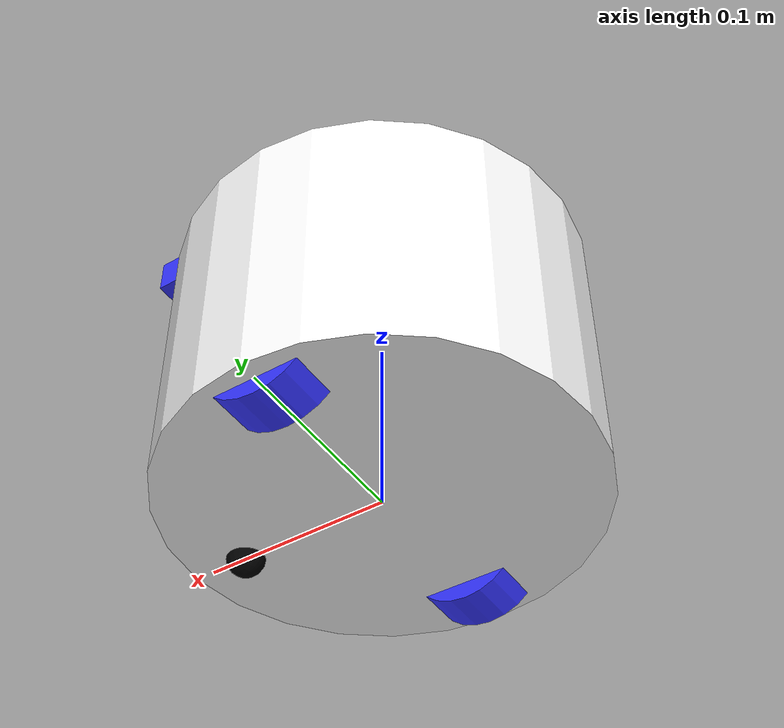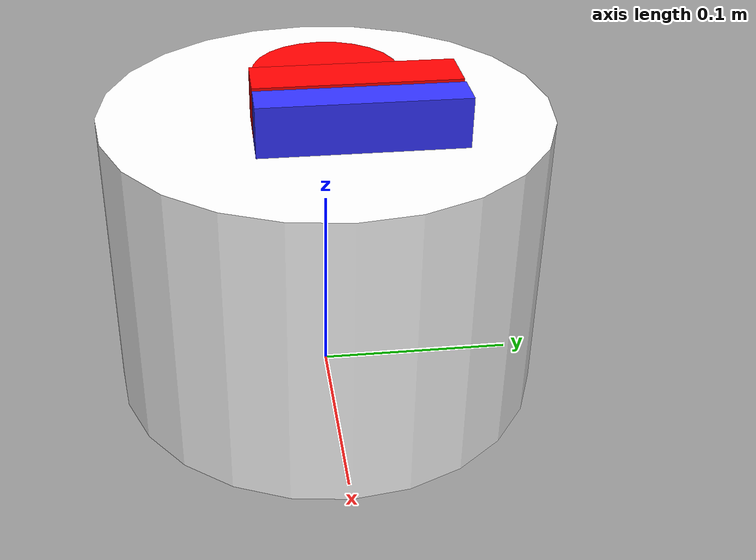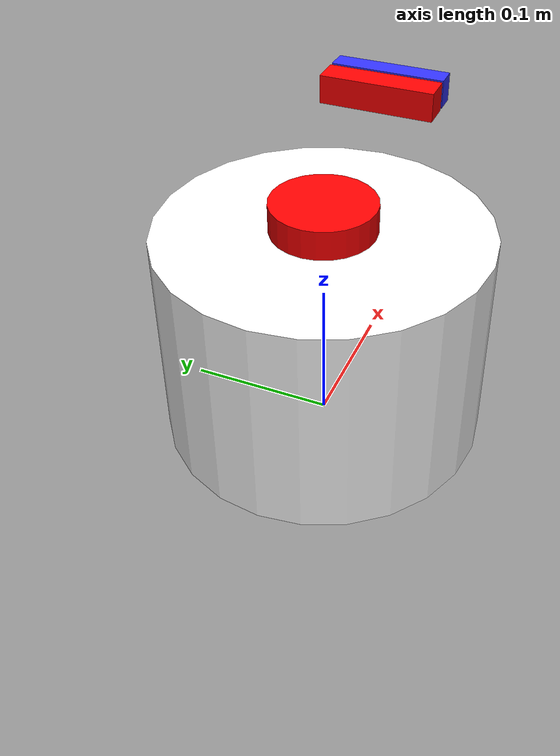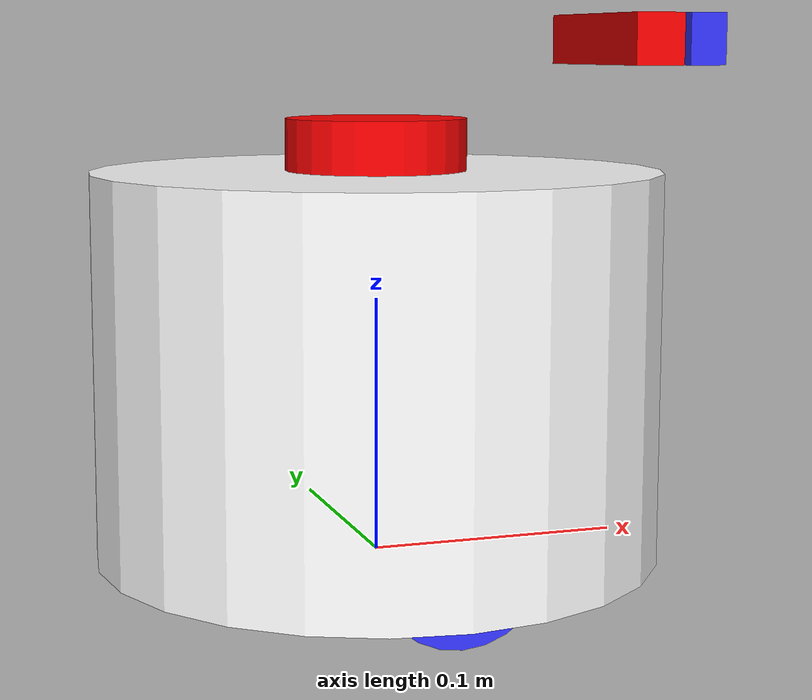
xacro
<?xml version="1.0"?>
<robot xmlns:xacro="http://www.ros.org/wiki/xacro" name="robot">

  <xacro:arg name="prefix" default="robot1_"/>

  <!-- chỉ include macro -->
  <xacro:include filename="$(find my_robot_model)/description/inertial_macros.xacro"/>
  <xacro:include filename="$(find my_robot_model)/description/robot_core.xacro"/>
  <xacro:include filename="$(find my_robot_model)/description/robot_control.xacro"/>
  <xacro:include filename="$(find my_robot_model)/description/lidar.xacro"/>
  <xacro:include filename="$(find my_robot_model)/description/camera.xacro"/>
  <xacro:include filename="$(find my_robot_model)/description/depth_camera.xacro"/>
  <xacro:include filename="$(find my_robot_model)/description/imu.xacro"/>

  <!-- ================= INSTANTIATE ROBOT ================= -->

  <xacro:robot_core prefix="$(arg prefix)"/>
  <xacro:robot_control prefix="$(arg prefix)"/>
  <xacro:lidar prefix="$(arg prefix)"/>
  <xacro:camera prefix="$(arg prefix)"/>
  <xacro:depth_camera prefix="$(arg prefix)"/>
  <xacro:imu prefix="$(arg prefix)"/>
</robot>

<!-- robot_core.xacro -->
<robot xmlns:xacro="http://www.ros.org/wiki/xacro">

<material name="white">
  <color rgba="1 1 1 1" />
</material>
<material name="orange">
  <color rgba="1 0.3 0.1 1"/>
</material>
<material name="blue">
  <color rgba="0.2 0.2 1 1"/>
</material>
<material name="black">
  <color rgba="0 0 0 1"/>
</material>
<material name="red">
  <color rgba="1 0 0 1"/>
</material>

  <!-- ===== INCLUDE INERTIAL MACROS ===== -->
  <xacro:include filename="inertial_macros.xacro"/>

  <!-- ===== ROBOT CORE ===== -->
  <xacro:macro name="robot_core" params="prefix">

    <!-- ===== BASE LINK ===== -->
    <link name="${prefix}base_link"/>

    <!-- ===== BASE FOOTPRINT ===== -->
    <joint name="${prefix}base_footprint_joint" type="fixed">
      <parent link="${prefix}base_link"/>
      <child link="${prefix}base_footprint"/>
      <origin xyz="0 0 0" rpy="0 0 0"/>
    </joint>

    <link name="${prefix}base_footprint"/>

    <!-- ===== CHASSIS ===== -->
    <joint name="${prefix}chassis_joint" type="fixed">
      <parent link="${prefix}base_link"/>
      <child link="${prefix}chassis"/>
      <origin xyz="0 0 0" rpy="0 0 0"/>
    </joint>

    <link name="${prefix}chassis">
      <visual>
        <origin xyz="0 0 0.075" rpy="0 0 0"/>
        <geometry>
          <cylinder radius="0.11" length="0.15"/>
        </geometry>
        <material name="white"/>
      </visual>
      <collision>
        <origin xyz="0 0 0.075" rpy="0 0 0"/>
        <geometry>
          <cylinder radius="0.11" length="0.15"/>
        </geometry>
      </collision>

      <xacro:inertial_cylinder
        mass="1.3"
        length="0.15"
        radius="0.11">
        <origin xyz="0 0 0.075" rpy="0 0 0"/>
      </xacro:inertial_cylinder>
    </link>

    <!-- ===== LEFT WHEEL ===== -->
    <joint name="${prefix}left_wheel_joint" type="continuous">
      <parent link="${prefix}base_link"/>
      <child link="${prefix}left_wheel"/>
      <origin xyz="0 0.0875 0.0235" rpy="-${pi/2} 0 0"/>
      <axis xyz="0 0 1"/>
    </joint>

    <link name="${prefix}left_wheel">
      <visual>
        <geometry>
          <cylinder radius="0.0325" length="0.025"/>
        </geometry>
        <material name="blue"/>
      </visual>
      <collision>
        <geometry>
          <cylinder radius="0.0325" length="0.025"/>
        </geometry>
        <surface>
          <friction>
            <ode>
              <mu>1.0</mu>
              <mu2>1.0</mu2>
            </ode>
          </friction>
        </surface>
      </collision>

      <xacro:inertial_cylinder
        mass="0.05"
        length="0.025"
        radius="0.0325">
        <origin xyz="0 0 0" rpy="0 0 0"/>
      </xacro:inertial_cylinder>
    </link>

    <!-- ===== RIGHT WHEEL ===== -->
    <joint name="${prefix}right_wheel_joint" type="continuous">
      <parent link="${prefix}base_link"/>
      <child link="${prefix}right_wheel"/>
      <origin xyz="0 -0.0875 0.0235" rpy="${pi/2} 0 0"/>
      <axis xyz="0 0 -1"/>
    </joint>

    <link name="${prefix}right_wheel">
      <visual>
        <geometry>
          <cylinder radius="0.0325" length="0.025"/>
        </geometry>
        <material name="blue"/>
      </visual>
      <collision>
        <geometry>
          <cylinder radius="0.0325" length="0.025"/>
        </geometry>
        <surface>
          <friction>
            <ode>
              <mu>1.0</mu>
              <mu2>1.0</mu2>
            </ode>
          </friction>
        </surface>
      </collision>

      <xacro:inertial_cylinder
        mass="0.05"
        length="0.025"
        radius="0.0325">
        <origin xyz="0 0 0" rpy="0 0 0"/>
      </xacro:inertial_cylinder>
    </link>

    <!-- ===== CASTER WHEEL ===== -->
    <joint name="${prefix}caster_wheel_joint" type="fixed">
      <parent link="${prefix}chassis"/>
      <child link="${prefix}caster_wheel"/>
      <origin xyz="0.08 0 0.001" rpy="0 0 0"/>
    </joint>

    <link name="${prefix}caster_wheel">
      <visual>
        <geometry>
          <sphere radius="0.01"/>
        </geometry>
        <material name="black"/>
      </visual>

      <collision>
        <geometry>
          <sphere radius="0.01"/>
        </geometry>
        <surface>
          <friction>
            <ode>
              <mu>0.0</mu>
              <mu2>0.0</mu2>
            </ode>
          </friction>
        </surface>
      </collision>

      <xacro:inertial_sphere mass="0.2" radius="0.01">
        <origin xyz="0 0 0" rpy="0 0 0"/>
      </xacro:inertial_sphere>
    </link>

    <!-- ===== TRANSMISSIONS ===== -->
    <transmission name="${prefix}left_wheel_trans">
      <type>transmission_interface/SimpleTransmission</type>

      <joint name="${prefix}left_wheel_joint">
        <hardwareInterface>hardware_interface/PositionJointInterface</hardwareInterface>
      </joint>

      <actuator name="${prefix}left_wheel_motor">
        <mechanicalReduction>1</mechanicalReduction>
      </actuator>
    </transmission>

    <transmission name="${prefix}right_wheel_trans">
      <type>transmission_interface/SimpleTransmission</type>

      <joint name="${prefix}right_wheel_joint">
        <hardwareInterface>hardware_interface/PositionJointInterface</hardwareInterface>
      </joint>

      <actuator name="${prefix}right_wheel_motor">
        <mechanicalReduction>1</mechanicalReduction>
      </actuator>
    </transmission>

  </xacro:macro>

</robot>

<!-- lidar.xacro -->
<robot xmlns:xacro="http://www.ros.org/wiki/xacro">

  <!-- ================= LIDAR MACRO ================= -->
  <xacro:macro name="lidar" params="prefix">

    <!-- ========= LIDAR JOINT ========= -->
    <joint name="${prefix}laser_joint" type="fixed">
      <parent link="${prefix}chassis"/>
      <child link="${prefix}laser"/>
      <origin xyz="0.0 0 0.15" rpy="0 0 0"/>
    </joint>

    <!-- ========= LIDAR LINK ========= -->
    <link name="${prefix}laser">
      <visual>
        <geometry>
          <cylinder radius="0.035" length="0.04"/>
        </geometry>
        <material name="red"/>
      </visual>

      <collision>
        <geometry>
          <cylinder radius="0.035" length="0.04"/>
        </geometry>
      </collision>

      <xacro:inertial_cylinder
        mass="0.125"
        length="0.04"
        radius="0.035">
        <origin xyz="0 0 0" rpy="0 0 0"/>
      </xacro:inertial_cylinder>
    </link>

    <!-- ========= GAZEBO LIDAR ========= -->
    <gazebo reference="${prefix}laser">
      <sensor name="${prefix}laser" type="gpu_lidar">

        <!-- ⚠️ topic PHẢI prefix -->
        <topic>${prefix}scan</topic>

        <frame>${prefix}laser</frame>
        <update_rate>10</update_rate>

        <lidar>
          <scan>
            <horizontal>
              <samples>360</samples>
              <resolution>1</resolution>
              <min_angle>-3.14159</min_angle>
              <max_angle>3.14159</max_angle>
            </horizontal>
          </scan>

          <range>
            <min>0.12</min>
            <max>10.0</max>
            <resolution>0.015</resolution>
          </range>

          <noise>
            <type>gaussian</type>
            <mean>0.0</mean>
            <stddev>0.01</stddev>
          </noise>
        </lidar>

        <always_on>true</always_on>
        <visualize>true</visualize>
      </sensor>
    </gazebo>

  </xacro:macro>

</robot>

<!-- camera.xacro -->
<robot xmlns:xacro="http://www.ros.org/wiki/xacro">

  <!-- ================= CAMERA MACRO ================= -->
  <xacro:macro name="camera" params="prefix">

    <!-- ===== CAMERA JOINT ===== -->
    <joint name="${prefix}camera_joint" type="fixed">
      <parent link="${prefix}chassis"/>
      <child link="${prefix}camera_link"/>
      <origin xyz="0.1 0 0.2" rpy="0 0 0"/>
    </joint>

    <!-- ===== CAMERA LINK ===== -->
    <link name="${prefix}camera_link">
      <visual>
        <geometry>
          <box size="0.02 0.08 0.02"/>
        </geometry>
        <material name="red"/>
      </visual>

      <collision>
        <geometry>
          <box size="0.02 0.08 0.02"/>
        </geometry>
      </collision>

      <xacro:inertial_box mass="0.1" x="0.02" y="0.08" z="0.02">
        <origin xyz="0 0 0" rpy="0 0 0"/>
      </xacro:inertial_box>
    </link>

    <!-- ===== OPTICAL FRAME ===== -->
    <joint name="${prefix}camera_optical_joint" type="fixed">
      <parent link="${prefix}camera_link"/>
      <child link="${prefix}camera_link_optical"/>
      <origin xyz="0 0 0" rpy="${-pi/2} 0 ${-pi/2}"/>
    </joint>

    <link name="${prefix}camera_link_optical"/>

    <!-- ===== GAZEBO CAMERA ===== -->
    <gazebo reference="${prefix}camera_link">
      <sensor name="${prefix}camera" type="camera">
        <pose relative_to="${prefix}camera_link_optical">
          0 0 0 0 -1.5708 -1.5708
        </pose>

        <topic>${prefix}camera</topic>
        <update_rate>30</update_rate>

        <camera>
          <horizontal_fov>1.089</horizontal_fov>
          <image>
            <width>640</width>
            <height>480</height>
            <format>R8G8B8</format>
          </image>
          <clip>
            <near>0.05</near>
            <far>8.0</far>
          </clip>
        </camera>

        <always_on>true</always_on>
        <visualize>true</visualize>
      </sensor>
    </gazebo>

  </xacro:macro>

</robot>

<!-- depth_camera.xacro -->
<robot xmlns:xacro="http://www.ros.org/wiki/xacro">

  <!-- ================= DEPTH CAMERA MACRO ================= -->
  <xacro:macro name="depth_camera" params="prefix">

    <!-- ===== GẮN CAMERA LÊN CHASSIS ===== -->
    <joint name="${prefix}depth_camera_joint" type="fixed">
      <parent link="${prefix}chassis"/>
      <child link="${prefix}depth_camera_link"/>
      <origin xyz="0.12 0 0.2" rpy="0 0 0"/>
    </joint>

    <link name="${prefix}depth_camera_link">
      <visual>
        <geometry>
          <box size="0.015 0.08 0.02"/>
        </geometry>
        <material name="blue"/>
      </visual>

      <collision>
        <geometry>
          <box size="0.015 0.08 0.02"/>
        </geometry>
      </collision>

      <!-- ⚠️ BẮT BUỘC CÓ ORIGIN -->
      <xacro:inertial_box
        mass="0.1"
        x="0.015"
        y="0.08"
        z="0.02">
        <origin xyz="0 0 0" rpy="0 0 0"/>
      </xacro:inertial_box>
    </link>

    <!-- ===== OPTICAL FRAME ===== -->
    <joint name="${prefix}depth_camera_optical_joint" type="fixed">
      <parent link="${prefix}depth_camera_link"/>
      <child link="${prefix}depth_camera_link_optical"/>
      <origin xyz="0 0 0" rpy="${-pi/2} 0 ${-pi/2}"/>
    </joint>

    <link name="${prefix}depth_camera_link_optical"/>

    <!-- ===== GAZEBO DEPTH CAMERA ===== -->
    <gazebo reference="${prefix}depth_camera_link">
      <sensor name="${prefix}depth_camera" type="depth_camera">

        <pose relative_to="${prefix}depth_camera_link_optical">
          0 0 0 0 -1.5708 -1.5708
        </pose>

        <topic>${prefix}depth_camera</topic>
        <update_rate>30</update_rate>

        <camera>
          <horizontal_fov>1.047</horizontal_fov>
          <image>
            <width>640</width>
            <height>480</height>
            <format>R_FLOAT32</format>
          </image>
          <clip>
            <near>0.1</near>
            <far>10.0</far>
          </clip>
        </camera>

        <always_on>true</always_on>
        <visualize>true</visualize>
      </sensor>
    </gazebo>

  </xacro:macro>

</robot>

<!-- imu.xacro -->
<robot xmlns:xacro="http://www.ros.org/wiki/xacro">

  <!-- ================= IMU MACRO ================= -->
  <xacro:macro name="imu" params="prefix">

    <!-- ========= IMU JOINT ========= -->
    <joint name="${prefix}imu_joint" type="fixed">
      <parent link="${prefix}chassis"/>
      <child link="${prefix}imu_link"/>
      <origin xyz="-0.055 0.025 0.081" rpy="0 0 ${pi}"/>
    </joint>

    <!-- ========= IMU LINK ========= -->
    <link name="${prefix}imu_link">
      <inertial>
        <mass value="0.05"/>
        <origin xyz="0 0 0" rpy="0 0 0"/>
        <inertia
          ixx="1e-4"
          iyy="1e-4"
          izz="1e-4"
          ixy="0"
          ixz="0"
          iyz="0"/>
      </inertial>
    </link>

  </xacro:macro>

</robot>
